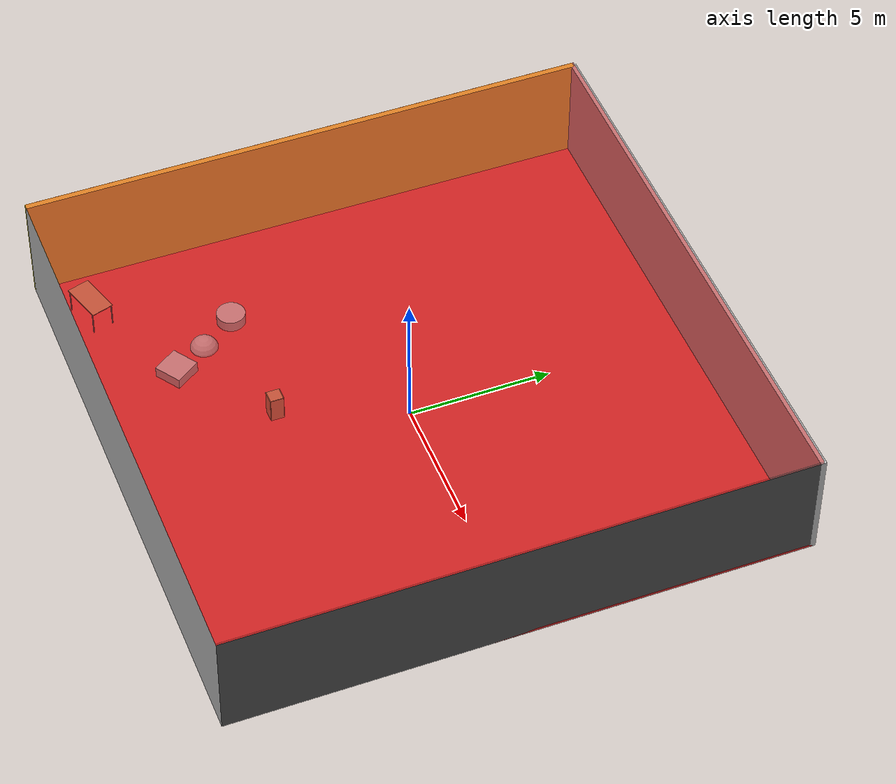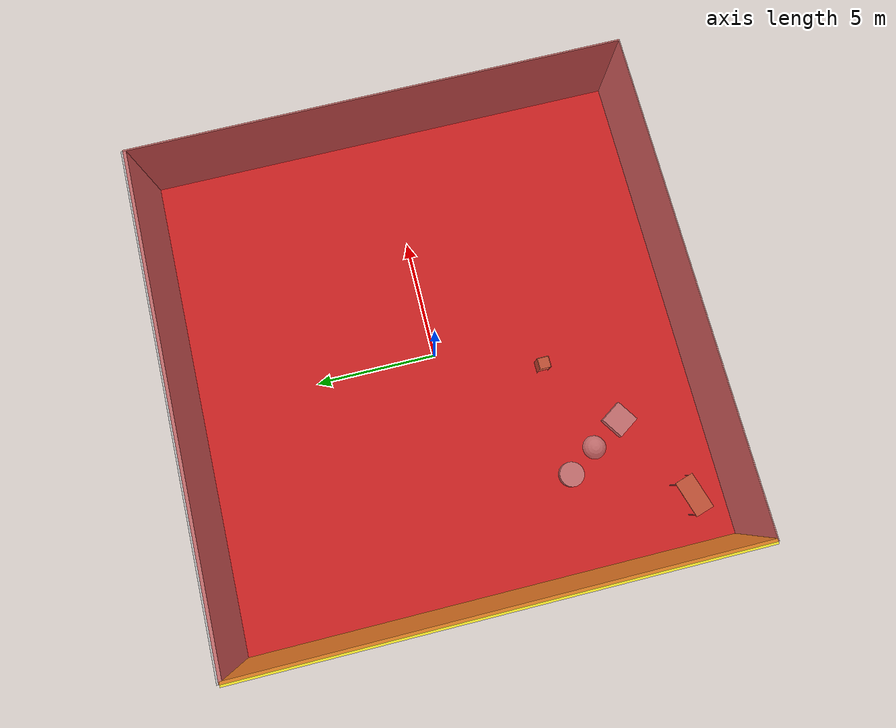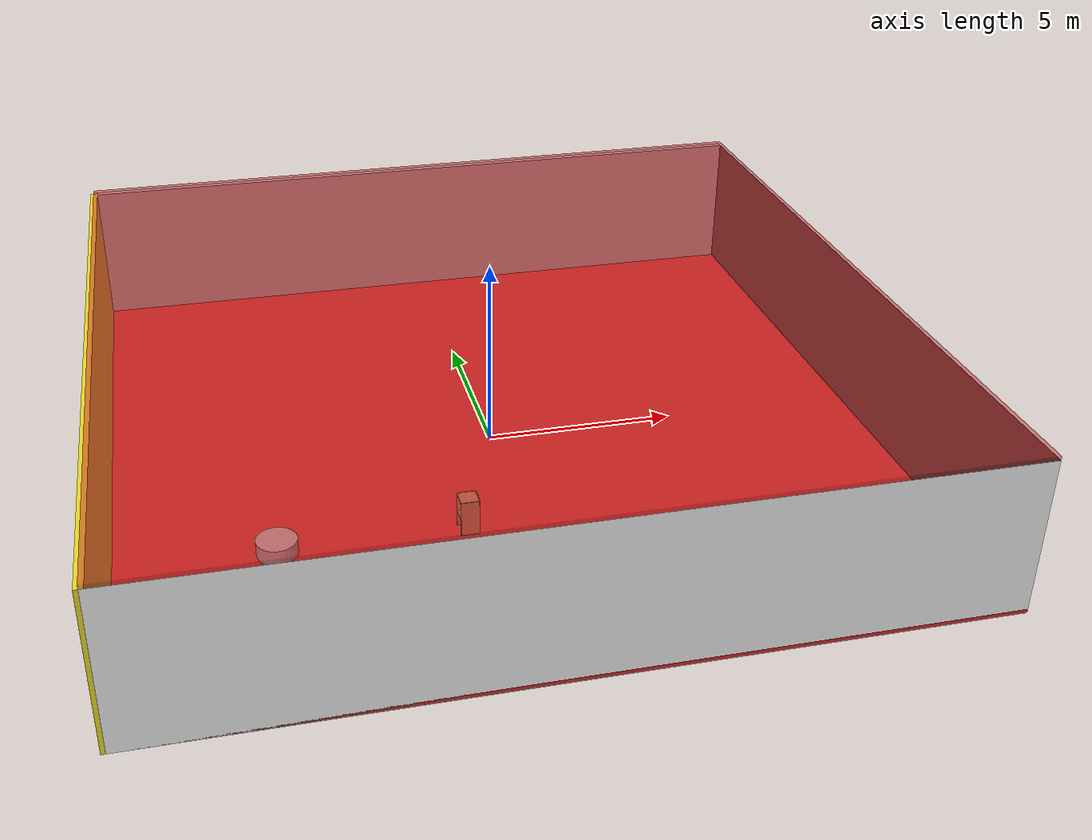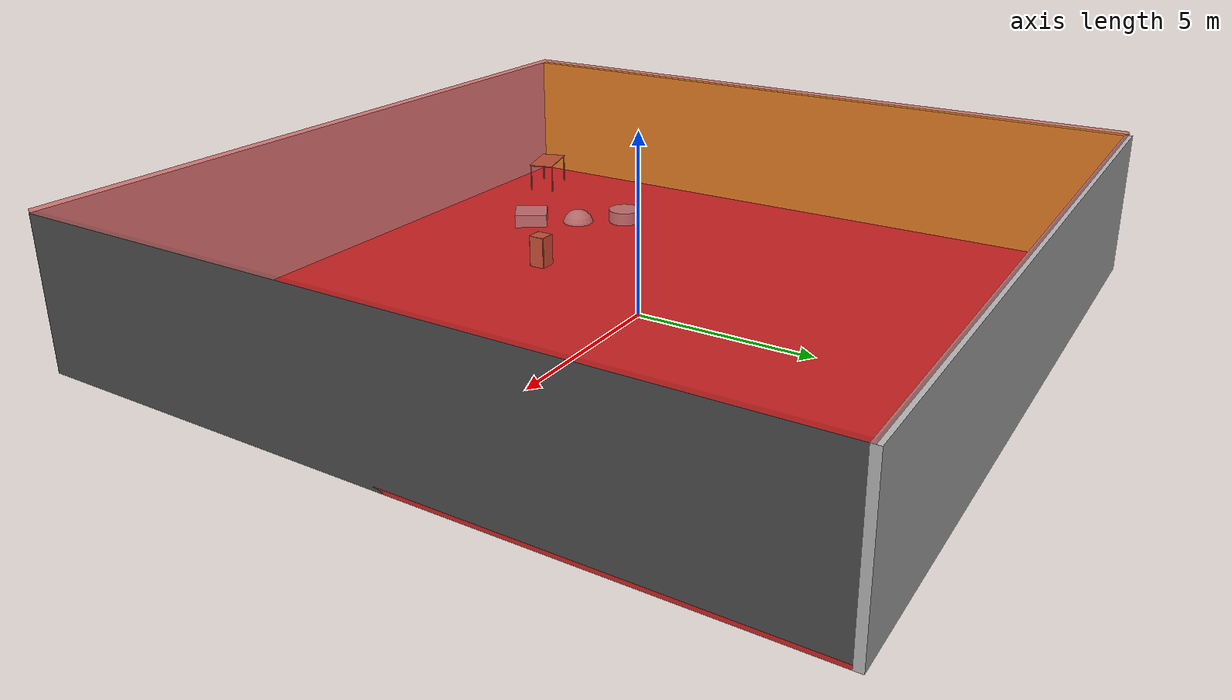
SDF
<sdf version="1.4">
 <world name="default">
  <physics type="ode">
   <max_step_size>0.001</max_step_size>
   <real_time_factor>1</real_time_factor>
   <real_time_update_rate>1000</real_time_update_rate>
   <gravity>0 0 -9.8</gravity>
  </physics>
  <scene><ambient>0.4 0.4 0.4 1</ambient><background>0.7 0.7 0.7 1</background><shadows>1</shadows></scene>
  <model name="Surrounding">
   <static>1</static>
   <link name="Ceiling">
    <collision name="Ceiling_Collision"><geometry><box><size>20 20 0.1</size></box></geometry></collision>
    <visual name="Ceiling_Visual">
     <geometry><box><size>20 20 0.1</size></box></geometry>
     <material>
      <script><uri>file://media/materials/scripts/gazebo.material</uri><name>Gazebo/RedTransparent</name></script>
     </material>
    </visual>
    <pose>0 0 4.05 0 0 0</pose>
   </link>
   <link name="Wall_South">
    <collision name="Wall_South_Collision">
     <geometry><box><size>20 0 4</size></box></geometry>
     <pose>0 0 2 0 -0 0</pose>
    </collision>
    <visual name="Wall_South_Visual">
     <pose>0 0 2 0 -0 0</pose>
     <geometry><box><size>20 0 4</size></box></geometry>
     <material>
      <script><uri>file://media/materials/scripts/gazebo.material</uri><name>Gazebo/White</name></script>
     </material>
    </visual>
    <velocity_decay><linear>0</linear><angular>0</angular></velocity_decay>
    <pose>0 -10 0 0 -0 0</pose>
   </link>
   <link name="Wall_East">
    <collision name="Wall_21_Collision">
     <geometry><box><size>20 0 4</size></box></geometry>
     <pose>0 0 2 0 -0 0</pose>
    </collision>
    <visual name="Wall_21_Visual">
     <pose>0 0 2 0 -0 0</pose>
     <geometry><box><size>20 0 4</size></box></geometry>
     <material>
      <script><uri>file://media/materials/scripts/gazebo.material</uri><name>Gazebo/DarkGrey</name></script>
     </material>
    </visual>
    <velocity_decay><linear>0</linear><angular>0</angular></velocity_decay>
    <pose>10 0 0 0 -0 1.5708</pose>
   </link>
   <link name="Wall_North">
    <collision name="Wall_22_Collision">
     <geometry><box><size>20 0.2 4</size></box></geometry>
     <pose>0 0 2 0 -0 0</pose>
    </collision>
    <visual name="Wall_22_Visual">
     <pose>0 0 2 0 -0 0</pose>
     <geometry><box><size>20 0.2 4</size></box></geometry>
     <material>
      <script><uri>file://media/materials/scripts/gazebo.material</uri><name>Gazebo/LightOn</name></script>
     </material>
    </visual>
    <velocity_decay><linear>0</linear><angular>0</angular></velocity_decay>
    <pose>0 10 0 0 -0 0</pose>
   </link>
   <link name="Wall_West">
    <collision name="Wall_23_Collision">
     <geometry><box><size>20 0.2 4</size></box></geometry>
     <pose>0 0 2 0 -0 0</pose>
    </collision>
    <visual name="Wall_23_Visual">
     <pose>0 0 2 0 -0 0</pose>
     <geometry><box><size>20 0.2 4</size></box></geometry>
     <material>
      <script><uri>file://media/materials/scripts/gazebo.material</uri><name>Gazebo/YellowGlow</name></script>
     </material>
    </visual>
    <velocity_decay><linear>0</linear><angular>0</angular></velocity_decay>
    <pose>-10 0 0 0 0 -1.5708</pose>
   </link>
   <link name="Ground_link">
    <collision name="collision">
     <pose>0 0 .05 0 -0 0</pose>
     <geometry><box><size>20 20 0.1</size></box></geometry>
    </collision>
    <visual name="visual">
     <pose>0 0 .05 0 -0 0</pose>
     <geometry><box><size>20 20 0.1</size></box></geometry>
     <material>
      <script><uri>file://media/materials/scripts/gazebo.material</uri><name>Gazebo/RedBright</name></script>
     </material>
    </visual>
   </link>
   <static>1</static>
  </model>
  <spherical_coordinates>
   <surface_model>EARTH_WGS84</surface_model>
   <latitude_deg>0</latitude_deg>
   <longitude_deg>0</longitude_deg>
   <elevation>0</elevation>
   <heading_deg>0</heading_deg>
  </spherical_coordinates>
  <light name="lightball_0" type="diffuse">
   <diffuse>0.8 0.8 0.8 1</diffuse>
   <specular>0.2 0.2 0.2 1</specular>
   <attenuation>
    <range>100</range>
    <constant>0.7</constant>
    <linear>0.01</linear>
    <quadratic>0.001</quadratic>
   </attenuation>
   <direction>-0.5 0.1 -0.9</direction>
   <pose>9.33691481959 -3.36983687674 1.25007264047 0 0 0</pose>
  </light>
  <light name="lightball_1" type="diffuse">
   <diffuse>0.8 0.8 0.8 1</diffuse>
   <specular>0.2 0.2 0.2 1</specular>
   <attenuation>
    <range>100</range>
    <constant>0.7</constant>
    <linear>0.01</linear>
    <quadratic>0.001</quadratic>
   </attenuation>
   <direction>-0.5 0.1 -0.9</direction>
   <pose>-7.51195773763 5.42443455631 2.20620570254 0 0 0</pose>
  </light>
  <light name="lightball_2" type="diffuse">
   <diffuse>0.8 0.8 0.8 1</diffuse>
   <specular>0.2 0.2 0.2 1</specular>
   <attenuation>
    <range>100</range>
    <constant>0.7</constant>
    <linear>0.01</linear>
    <quadratic>0.001</quadratic>
   </attenuation>
   <direction>-0.5 0.1 -0.9</direction>
   <pose>7.89601152999 -8.43557534709 3.63411348803 0 0 0</pose>
  </light>
  <light name="lightball_3" type="diffuse">
   <diffuse>0.8 0.8 0.8 1</diffuse>
   <specular>0.2 0.2 0.2 1</specular>
   <attenuation>
    <range>100</range>
    <constant>0.7</constant>
    <linear>0.01</linear>
    <quadratic>0.001</quadratic>
   </attenuation>
   <direction>-0.5 0.1 -0.9</direction>
   <pose>-4.63094873298 1.38425331071 2.96049522339 0 0 0</pose>
  </light>
  <light name="lightball_4" type="diffuse">
   <diffuse>0.8 0.8 0.8 1</diffuse>
   <specular>0.2 0.2 0.2 1</specular>
   <attenuation>
    <range>100</range>
    <constant>0.7</constant>
    <linear>0.01</linear>
    <quadratic>0.001</quadratic>
   </attenuation>
   <direction>-0.5 0.1 -0.9</direction>
   <pose>6.62417711097 7.98232027532 3.65234535728 0 0 0</pose>
  </light>
  <light name="lightball_5" type="diffuse">
   <diffuse>0.8 0.8 0.8 1</diffuse>
   <specular>0.2 0.2 0.2 1</specular>
   <attenuation>
    <range>100</range>
    <constant>0.7</constant>
    <linear>0.01</linear>
    <quadratic>0.001</quadratic>
   </attenuation>
   <direction>-0.5 0.1 -0.9</direction>
   <pose>-8.30845283796 5.13995981962 2.43270825617 0 0 0</pose>
  </light>
  <light name="lightball_6" type="diffuse">
   <diffuse>0.8 0.8 0.8 1</diffuse>
   <specular>0.2 0.2 0.2 1</specular>
   <attenuation>
    <range>100</range>
    <constant>0.7</constant>
    <linear>0.01</linear>
    <quadratic>0.001</quadratic>
   </attenuation>
   <direction>-0.5 0.1 -0.9</direction>
   <pose>-9.10432778845 7.38599184249 3.63111333652 0 0 0</pose>
  </light>
  <light name="lightball_7" type="diffuse">
   <diffuse>0.8 0.8 0.8 1</diffuse>
   <specular>0.2 0.2 0.2 1</specular>
   <attenuation>
    <range>100</range>
    <constant>0.7</constant>
    <linear>0.01</linear>
    <quadratic>0.001</quadratic>
   </attenuation>
   <direction>-0.5 0.1 -0.9</direction>
   <pose>-7.80049142291 2.5824896998 3.13497475058 0 0 0</pose>
  </light>
  <light name="lightball_8" type="diffuse">
   <diffuse>0.8 0.8 0.8 1</diffuse>
   <specular>0.2 0.2 0.2 1</specular>
   <attenuation>
    <range>100</range>
    <constant>0.7</constant>
    <linear>0.01</linear>
    <quadratic>0.001</quadratic>
   </attenuation>
   <direction>-0.5 0.1 -0.9</direction>
   <pose>-7.48953034163 3.00288732358 0.821518837385 0 0 0</pose>
  </light>
  <include><uri>model://table</uri><pose>-7.99786128233 -8.57292187296 0 0 0 0.297265746463</pose></include>
  <include>
   <uri>model://textured_shapes</uri>
   <pose>-5.25591700742 -5.44733690954 0 0 0 0.588840584735</pose>
  </include>
  <include><uri>model://cabinet</uri><pose>-1.49813090663 -4.2102192721 0 0 0 0.00756032016923</pose></include>
 </world>
</sdf>

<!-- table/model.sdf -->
<sdf version="1.5">
  <model name="table">
    <static>true</static>
    <link name="link">
      <collision name="surface">
        <pose>0 0 1.0 0 0 0</pose>
        <geometry>
          <box>
            <size>1.5 0.8 0.03</size>
          </box>
        </geometry>
        <surface>
          <friction>
            <ode>
              <mu>0.6</mu>
              <mu2>0.6</mu2>
            </ode>
          </friction>
        </surface>
      </collision>
      <visual name="visual1">
        <pose>0 0 1.0 0 0 0</pose>
        <geometry>
          <box>
            <size>1.5 0.8 0.03</size>
          </box>
        </geometry>
        <material>
          <script>
            <uri>model://media/materials/scripts/gazebo.material</uri>
            <name>Gazebo/Wood</name>
          </script>
        </material>
      </visual>
      <collision name="front_left_leg">
        <pose>0.68 0.38 0.5 0 0 0</pose>
        <geometry>
          <cylinder>
            <radius>0.02</radius>
            <length>1.0</length>
          </cylinder>
        </geometry>
      </collision>
      <visual name="front_left_leg">
        <pose>0.68 0.38 0.5 0 0 0</pose>
        <geometry>
          <cylinder>
            <radius>0.02</radius>
            <length>1.0</length>
          </cylinder>
        </geometry>
        <material>
          <script>
            <uri>model://media/materials/scripts/gazebo.material</uri>
            <name>Gazebo/Grey</name>
          </script>
        </material>
      </visual>
      <collision name="front_right_leg">
        <pose>0.68 -0.38 0.5 0 0 0</pose>
        <geometry>
          <cylinder>
            <radius>0.02</radius>
            <length>1.0</length>
          </cylinder>
        </geometry>
      </collision>
      <visual name="front_right_leg">
        <pose>0.68 -0.38 0.5 0 0 0</pose>
        <geometry>
          <cylinder>
            <radius>0.02</radius>
            <length>1.0</length>
          </cylinder>
        </geometry>
        <material>
          <script>
            <uri>model://media/materials/scripts/gazebo.material</uri>
            <name>Gazebo/Grey</name>
          </script>
        </material>
      </visual>
      <collision name="back_right_leg">
        <pose>-0.68 -0.38 0.5 0 0 0</pose>
        <geometry>
          <cylinder>
            <radius>0.02</radius>
            <length>1.0</length>
          </cylinder>
        </geometry>
      </collision>
      <visual name="back_right_leg">
        <pose>-0.68 -0.38 0.5 0 0 0</pose>
        <geometry>
          <cylinder>
            <radius>0.02</radius>
            <length>1.0</length>
          </cylinder>
        </geometry>
        <material>
          <script>
            <uri>model://media/materials/scripts/gazebo.material</uri>
            <name>Gazebo/Grey</name>
          </script>
        </material>
      </visual>
      <collision name="back_left_leg">
        <pose>-0.68 0.38 0.5 0 0 0</pose>
        <geometry>
          <cylinder>
            <radius>0.02</radius>
            <length>1.0</length>
          </cylinder>
        </geometry>
      </collision>
      <visual name="back_left_leg">
        <pose>-0.68 0.38 0.5 0 0 0</pose>
        <geometry>
          <cylinder>
            <radius>0.02</radius>
            <length>1.0</length>
          </cylinder>
        </geometry>
        <material>
          <script>
            <uri>model://media/materials/scripts/gazebo.material</uri>
            <name>Gazebo/Grey</name>
          </script>
        </material>
      </visual>
    </link>
  </model>
</sdf>

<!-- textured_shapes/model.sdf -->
<sdf version="1.6">
  <model name="textured_shapes">
    <pose>0 0 0.5 0 0 0</pose>
    <link name="box">
      <pose>0 -1.5 0 0 0 0</pose>
      <collision name="collision">
        <geometry>
          <box>
            <size>1 1 1</size>
          </box>
        </geometry>
      </collision>
      <visual name="visual">
        <geometry>
          <box>
            <size>1 1 1</size>
          </box>
        </geometry>
        <material>
          <script>
            <uri>model://../model_source/models/textured_shapes/materials/scripts</uri>
            <uri>model://../model_source/models/textured_shapes/materials/textures</uri>
            <name>TexturedShape/Squares</name>
          </script>
        </material>
      </visual>
    </link>
    <link name="sphere">
      <collision name="collision">
        <geometry>
          <sphere>
            <radius>0.5</radius>
          </sphere>
        </geometry>
      </collision>
      <visual name="visual">
        <geometry>
          <sphere>
            <radius>0.5</radius>
          </sphere>
        </geometry>
        <material>
          <script>
            <uri>model://../model_source/models/textured_shapes/materials/scripts</uri>
            <uri>model://../model_source/models/textured_shapes/materials/textures</uri>
            <name>TexturedShape/Squares</name>
          </script>
        </material>
      </visual>
    </link>
    <link name="cylinder">
      <pose>0 1.5 0 0 0 0</pose>
      <collision name="collision">
        <geometry>
          <cylinder>
            <radius>0.5</radius>
            <length>1</length>
          </cylinder>
        </geometry>
      </collision>
      <visual name="visual">
        <geometry>
          <cylinder>
            <radius>0.5</radius>
            <length>1</length>
          </cylinder>
        </geometry>
        <material>
          <script>
            <uri>model://../model_source/models/textured_shapes/materials/scripts</uri>
            <uri>model://../model_source/models/textured_shapes/materials/textures</uri>
            <name>TexturedShape/Squares</name>
          </script>
        </material>
      </visual>
    </link>
  </model>
</sdf>

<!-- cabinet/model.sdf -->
<sdf version="1.5">
  <model name="cabinet">
    <static>true</static>
    <link name="cabinet_bottom_plate">
      <inertial>
        <pose>0 0 -1 0 0 0</pose>
        <inertia>
          <ixx>2.050000</ixx>
          <ixy>0</ixy>
          <ixz>0</ixz>
          <iyy>2.050000</iyy>
          <iyz>0</iyz>
          <izz>2.050000</izz>
        </inertia>
        <mass>25.000000</mass>
      </inertial>
      <collision name="cabinet_bottom_plate_geom">
        <pose>0 0 0.010000 0 0 0</pose>
        <geometry>
          <box>
            <size>0.450000 0.450000 0.020000</size>
          </box>
        </geometry>
      </collision>
      <visual name="cabinet_bottom_plate_geom_visual">
        <pose>0 0 0.010000 0 0 0</pose>
        <geometry>
          <box>
            <size>0.450000 0.450000 0.020000</size>
          </box>
        </geometry>
        <material>
          <script>
            <uri>model://media/materials/scripts/gazebo.material</uri>
            <name>Gazebo/Wood</name>
          </script>
        </material>
      </visual>
      <collision name="cabinet_bottom_plate_geom_cabinet_back_plate">
        <pose>0.235000 0 0.510000 0 0 0</pose>
        <geometry>
          <box>
            <size>0.020000 0.450000 1.020000</size>
          </box>
        </geometry>
      </collision>
      <visual name="cabinet_bottom_plate_geom_cabinet_back_plate_visual">
        <pose>0.235000 0 0.510000 0 0 0</pose>
        <geometry>
          <box>
            <size>0.020000 0.450000 1.020000</size>
          </box>
        </geometry>
        <material>
          <script>
            <uri>model://media/materials/scripts/gazebo.material</uri>
            <name>Gazebo/Wood</name>
          </script>
        </material>
      </visual>
      <collision name="cabinet_bottom_plate_geom_cabinet_left_plate">
        <pose>0 0.235000 0.510000 0 0 0</pose>
        <geometry>
          <box>
            <size>0.450000 0.020000 1.020000</size>
          </box>
        </geometry>
      </collision>
      <visual name="cabinet_bottom_plate_geom_cabinet_left_plate_visual">
        <pose>0 0.235000 0.510000 0 0 0</pose>
        <geometry>
          <box>
            <size>0.450000 0.020000 1.020000</size>
          </box>
        </geometry>
        <material>
          <script>
            <uri>model://media/materials/scripts/gazebo.material</uri>
            <name>Gazebo/Wood</name>
          </script>
        </material>
      </visual>
      <collision name="cabinet_bottom_plate_geom_cabinet_middle_plate">
        <pose>0 0 0.510000 0 0 0</pose>
        <geometry>
          <box>
            <size>0.450000 0.450000 0.020000</size>
          </box>
        </geometry>
      </collision>
      <visual name="cabinet_bottom_plate_geom_cabinet_middle_plate_visual">
        <pose>0 0 0.510000 0 0 0</pose>
        <geometry>
          <box>
            <size>0.450000 0.450000 0.020000</size>
          </box>
        </geometry>
        <material>
          <script>
            <uri>model://media/materials/scripts/gazebo.material</uri>
            <name>Gazebo/Wood</name>
          </script>
        </material>
      </visual>
      <collision name="cabinet_bottom_plate_geom_cabinet_right_plate">
        <pose>0 -0.235000 0.510000 0 0 0</pose>
        <geometry>
          <box>
            <size>0.450000 0.020000 1.020000</size>
          </box>
        </geometry>
      </collision>
      <visual name="cabinet_bottom_plate_geom_cabinet_right_plate_visual">
        <pose>0 -0.235000 0.510000 0 0 0</pose>
        <geometry>
          <box>
            <size>0.450000 0.020000 1.020000</size>
          </box>
        </geometry>
        <material>
          <script>
            <uri>model://media/materials/scripts/gazebo.material</uri>
            <name>Gazebo/Wood</name>
          </script>
        </material>
      </visual>
      <collision name="cabinet_bottom_plate_geom_cabinet_top_plate">
        <pose>0 0 1.010000 0 0 0</pose>
        <geometry>
          <box>
            <size>0.450000 0.450000 0.020000</size>
          </box>
        </geometry>
      </collision>
      <visual name="cabinet_bottom_plate_geom_cabinet_top_plate_visual">
        <pose>0 0 1.010000 0 0 0</pose>
        <geometry>
          <box>
            <size>0.450000 0.450000 0.020000</size>
          </box>
        </geometry>
        <material>
          <script>
            <uri>model://media/materials/scripts/gazebo.material</uri>
            <name>Gazebo/Wood</name>
          </script>
        </material>
      </visual>
    </link>
  </model>
</sdf>
